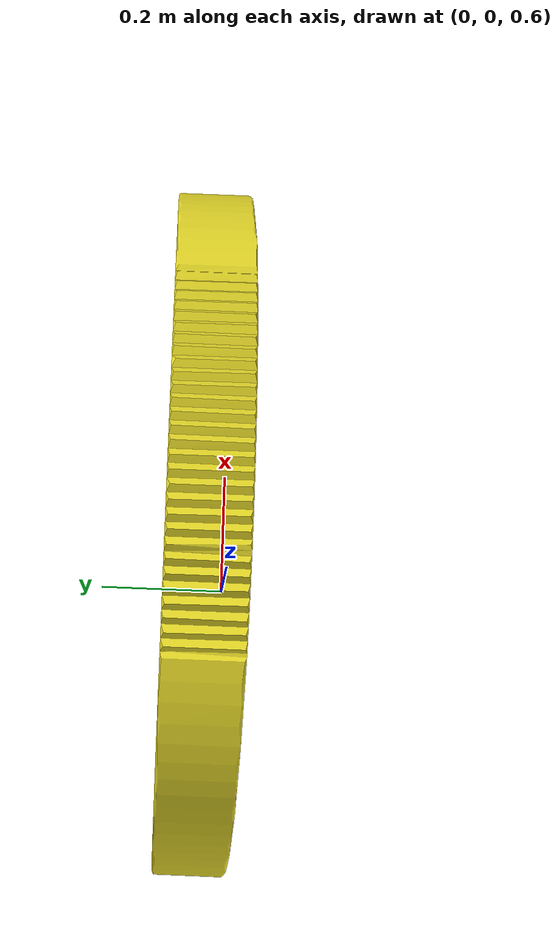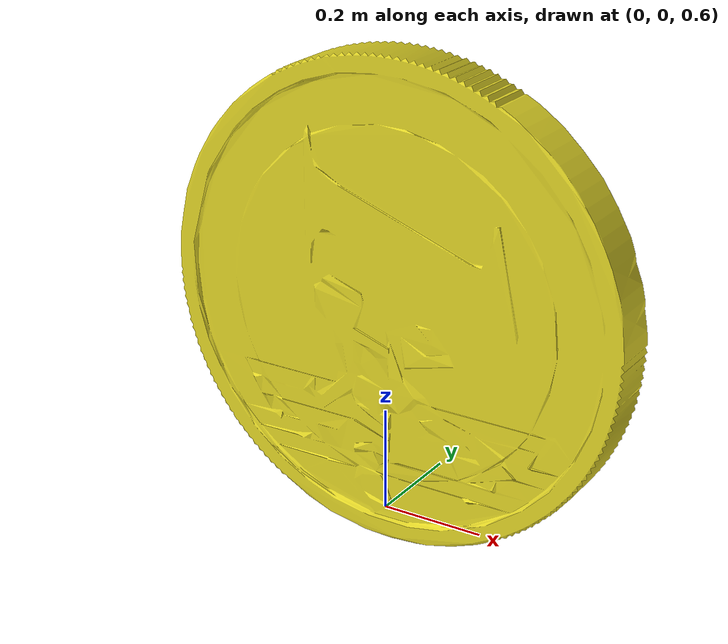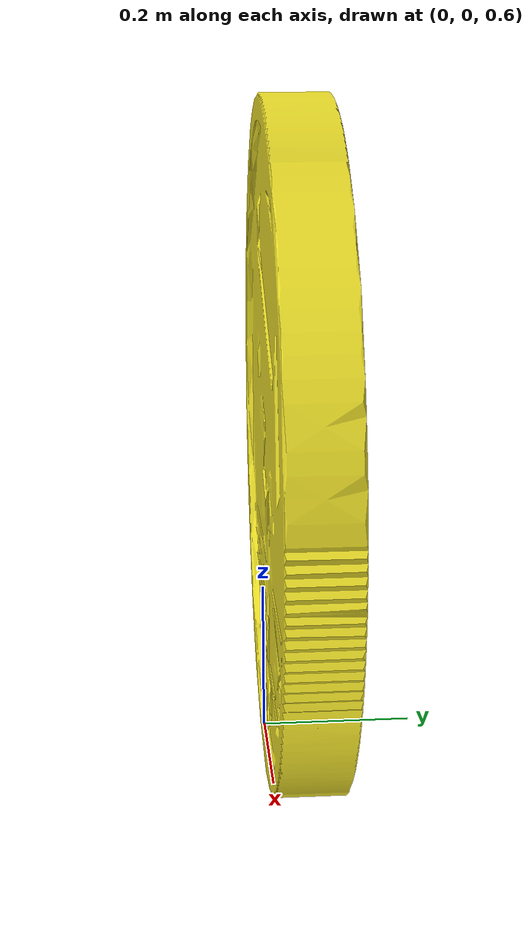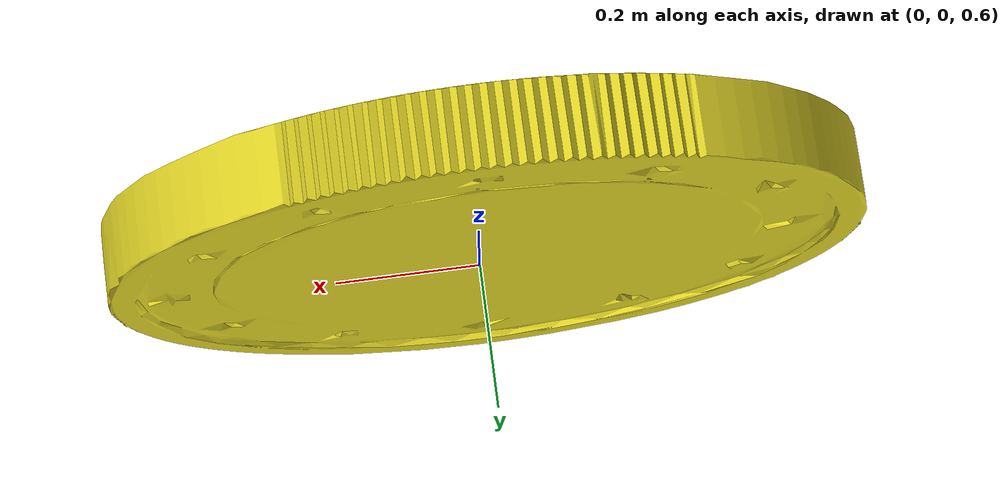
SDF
<?xml version="1.0" encoding="utf-8"?>

<!-- Only put coins in this model. All the links will spin -->
<sdf version="1.4">
  <model name="coins">
    <static>0</static>
    <link name="coin_link">
      <gravity>0</gravity>
      <pose>0.0 0.0 1 0 0 0</pose>
      <visual name="coin_12_Visual">
        <pose>0 0 0 0 0 0</pose>
        <geometry>
          <mesh>
            <uri>model://crazy_coins/meshes/coin.dae</uri>
            <scale>0.4 0.4 0.4</scale>
          </mesh>
        </geometry>
        <material>
          <script>
            <uri>file://media/materials/scripts/gazebo.material</uri>
            <name>Gazebo/Yellow</name>
          </script>
        </material>
      </visual>
    </link>

    <plugin name="coins_manager_plugin" filename="libcoins_manager_plugin.so">
      <goal_coin>coin_39</goal_coin>
      <robot_name>labrob</robot_name>
      <update_rate>1.0</update_rate>
      <spin_velocity>1.570796327</spin_velocity>
    </plugin>
  </model>
</sdf>
